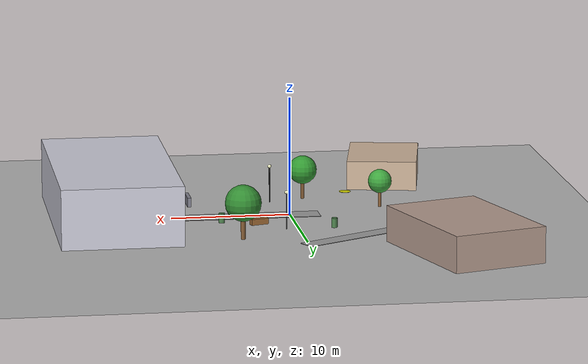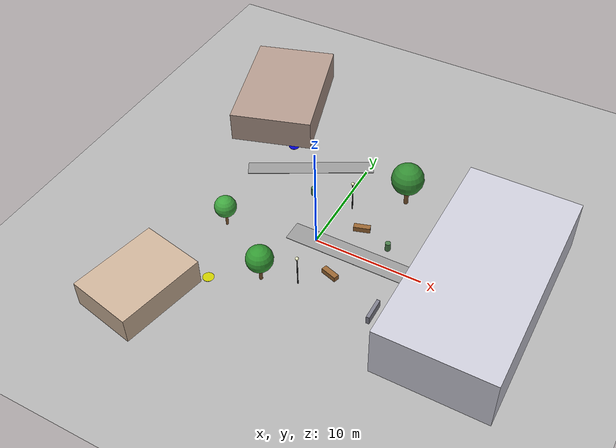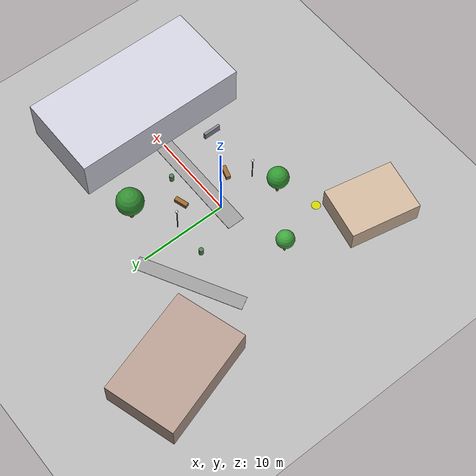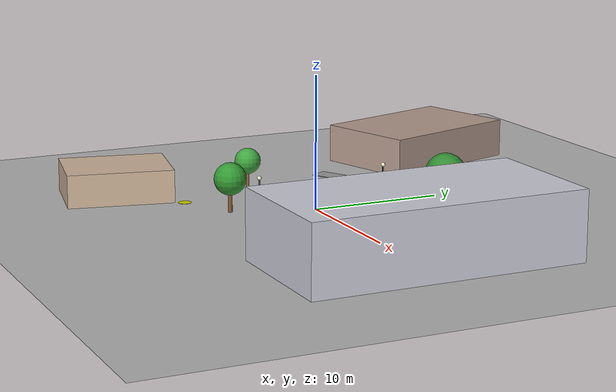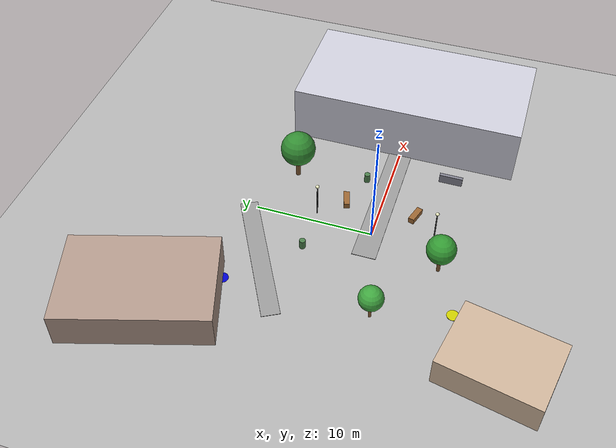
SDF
<?xml version="1.0" ?>
<sdf version="1.6">
  <world name="campus_world">

    <!-- Physics settings for stability -->
    <physics type="ode">
      <max_step_size>0.001</max_step_size>
      <real_time_factor>1</real_time_factor>
      <real_time_update_rate>1000</real_time_update_rate>
      <ode>
        <solver>
          <type>quick</type>
          <iters>50</iters>
          <sor>1.3</sor>
        </solver>
        <constraints>
          <cfm>0.0</cfm>
          <erp>0.2</erp>
          <contact_max_correcting_vel>100.0</contact_max_correcting_vel>
          <contact_surface_layer>0.001</contact_surface_layer>
        </constraints>
      </ode>
    </physics>

    <!-- Lighting -->
    <include>
      <uri>model://sun</uri>
    </include>

    <!-- Ground plane -->
    <model name="ground_plane">
      <static>true</static>
      <link name="link">
        <collision name="collision">
          <geometry>
            <plane>
              <normal>0 0 1</normal>
              <size>100 100</size>
            </plane>
          </geometry>
          <surface>
            <friction>
              <ode>
                <mu>1.0</mu>
                <mu2>1.0</mu2>
              </ode>
            </friction>
          </surface>
        </collision>
        <visual name="visual">
          <geometry>
            <plane>
              <normal>0 0 1</normal>
              <size>100 100</size>
            </plane>
          </geometry>
          <material>
            <ambient>0.3 0.3 0.3 1</ambient>
            <diffuse>0.7 0.7 0.7 1</diffuse>
          </material>
        </visual>
      </link>
    </model>

    <!-- CAMPUS BUILDINGS                                               -->

    <!-- Main Building -->
    <model name="building_main">
      <static>true</static>
      <pose>15 0 2.5 0 0 0</pose>
      <link name="link">
        <collision name="collision">
          <geometry>
            <box><size>10 20 5</size></box>
          </geometry>
        </collision>
        <visual name="visual">
          <geometry>
            <box><size>10 20 5</size></box>
          </geometry>
          <material>
            <ambient>0.6 0.6 0.65 1</ambient>
            <diffuse>0.8 0.8 0.85 1</diffuse>
          </material>
        </visual>
      </link>
    </model>

    <!-- Library Building -->
    <model name="building_library">
      <static>true</static>
      <pose>-12 15 1.5 0 0 0.3</pose>
      <link name="link">
        <collision name="collision">
          <geometry>
            <box><size>8 12 3</size></box>
          </geometry>
        </collision>
        <visual name="visual">
          <geometry>
            <box><size>8 12 3</size></box>
          </geometry>
          <material>
            <ambient>0.5 0.4 0.35 1</ambient>
            <diffuse>0.7 0.6 0.55 1</diffuse>
          </material>
        </visual>
      </link>
    </model>

    <!-- Cafeteria -->
    <model name="building_cafeteria">
      <static>true</static>
      <pose>-10 -12 1.25 0 0 -0.2</pose>
      <link name="link">
        <collision name="collision">
          <geometry>
            <box><size>6 8 2.5</size></box>
          </geometry>
        </collision>
        <visual name="visual">
          <geometry>
            <box><size>6 8 2.5</size></box>
          </geometry>
          <material>
            <ambient>0.6 0.5 0.4 1</ambient>
            <diffuse>0.8 0.7 0.6 1</diffuse>
          </material>
        </visual>
      </link>
    </model>

    <!-- PATHWAYS (slightly raised concrete paths)                      -->

    <!-- Main pathway -->
    <model name="pathway_main">
      <static>true</static>
      <pose>5 0 0.02 0 0 0</pose>
      <link name="link">
        <collision name="collision">
          <geometry>
            <box><size>15 2 0.04</size></box>
          </geometry>
        </collision>
        <visual name="visual">
          <geometry>
            <box><size>15 2 0.04</size></box>
          </geometry>
          <material>
            <ambient>0.5 0.5 0.5 1</ambient>
            <diffuse>0.6 0.6 0.6 1</diffuse>
          </material>
        </visual>
      </link>
    </model>

    <!-- Side pathway to library -->
    <model name="pathway_library">
      <static>true</static>
      <pose>-5 8 0.02 0 0 0.5</pose>
      <link name="link">
        <collision name="collision">
          <geometry>
            <box><size>12 1.5 0.04</size></box>
          </geometry>
        </collision>
        <visual name="visual">
          <geometry>
            <box><size>12 1.5 0.04</size></box>
          </geometry>
          <material>
            <ambient>0.5 0.5 0.5 1</ambient>
            <diffuse>0.6 0.6 0.6 1</diffuse>
          </material>
        </visual>
      </link>
    </model>

    <!-- OBSTACLES - Benches, Trash cans, Bike racks                    -->

    <!-- Bench 1 -->
    <model name="bench_1">
      <static>true</static>
      <pose>3 3 0.25 0 0 0.3</pose>
      <link name="link">
        <collision name="collision">
          <geometry>
            <box><size>1.5 0.5 0.5</size></box>
          </geometry>
        </collision>
        <visual name="visual">
          <geometry>
            <box><size>1.5 0.5 0.5</size></box>
          </geometry>
          <material>
            <ambient>0.4 0.25 0.1 1</ambient>
            <diffuse>0.6 0.4 0.2 1</diffuse>
          </material>
        </visual>
      </link>
    </model>

    <!-- Bench 2 -->
    <model name="bench_2">
      <static>true</static>
      <pose>3 -3 0.25 0 0 -0.3</pose>
      <link name="link">
        <collision name="collision">
          <geometry>
            <box><size>1.5 0.5 0.5</size></box>
          </geometry>
        </collision>
        <visual name="visual">
          <geometry>
            <box><size>1.5 0.5 0.5</size></box>
          </geometry>
          <material>
            <ambient>0.4 0.25 0.1 1</ambient>
            <diffuse>0.6 0.4 0.2 1</diffuse>
          </material>
        </visual>
      </link>
    </model>

    <!-- Trash can 1 -->
    <model name="trashcan_1">
      <static>true</static>
      <pose>6 2 0.4 0 0 0</pose>
      <link name="link">
        <collision name="collision">
          <geometry>
            <cylinder><radius>0.25</radius><length>0.8</length></cylinder>
          </geometry>
        </collision>
        <visual name="visual">
          <geometry>
            <cylinder><radius>0.25</radius><length>0.8</length></cylinder>
          </geometry>
          <material>
            <ambient>0.2 0.3 0.2 1</ambient>
            <diffuse>0.3 0.5 0.3 1</diffuse>
          </material>
        </visual>
      </link>
    </model>

    <!-- Trash can 2 -->
    <model name="trashcan_2">
      <static>true</static>
      <pose>-3 5 0.4 0 0 0</pose>
      <link name="link">
        <collision name="collision">
          <geometry>
            <cylinder><radius>0.25</radius><length>0.8</length></cylinder>
          </geometry>
        </collision>
        <visual name="visual">
          <geometry>
            <cylinder><radius>0.25</radius><length>0.8</length></cylinder>
          </geometry>
          <material>
            <ambient>0.2 0.3 0.2 1</ambient>
            <diffuse>0.3 0.5 0.3 1</diffuse>
          </material>
        </visual>
      </link>
    </model>

    <!-- Bike rack -->
    <model name="bike_rack">
      <static>true</static>
      <pose>8 -5 0.4 0 0 1.57</pose>
      <link name="link">
        <collision name="collision">
          <geometry>
            <box><size>2 0.3 0.8</size></box>
          </geometry>
        </collision>
        <visual name="visual">
          <geometry>
            <box><size>2 0.3 0.8</size></box>
          </geometry>
          <material>
            <ambient>0.3 0.3 0.35 1</ambient>
            <diffuse>0.5 0.5 0.55 1</diffuse>
          </material>
        </visual>
      </link>
    </model>

    <!-- TREES (cylinders for trunks, spheres for canopy)               -->

    <!-- Tree 1 -->
    <model name="tree_1">
      <static>true</static>
      <pose>-2 -6 0 0 0 0</pose>
      <link name="trunk">
        <visual name="trunk_visual">
          <pose>0 0 1 0 0 0</pose>
          <geometry>
            <cylinder><radius>0.15</radius><length>2</length></cylinder>
          </geometry>
          <material>
            <ambient>0.3 0.2 0.1 1</ambient>
            <diffuse>0.5 0.35 0.2 1</diffuse>
          </material>
        </visual>
        <collision name="trunk_collision">
          <pose>0 0 1 0 0 0</pose>
          <geometry>
            <cylinder><radius>0.15</radius><length>2</length></cylinder>
          </geometry>
        </collision>
        <visual name="canopy_visual">
          <pose>0 0 2.5 0 0 0</pose>
          <geometry>
            <sphere><radius>1.2</radius></sphere>
          </geometry>
          <material>
            <ambient>0.1 0.4 0.1 1</ambient>
            <diffuse>0.2 0.6 0.2 1</diffuse>
          </material>
        </visual>
        <collision name="canopy_collision">
          <pose>0 0 2.5 0 0 0</pose>
          <geometry>
            <sphere><radius>1.2</radius></sphere>
          </geometry>
        </collision>
      </link>
    </model>

    <!-- Tree 2 -->
    <model name="tree_2">
      <static>true</static>
      <pose>5 8 0 0 0 0</pose>
      <link name="trunk">
        <visual name="trunk_visual">
          <pose>0 0 1.2 0 0 0</pose>
          <geometry>
            <cylinder><radius>0.2</radius><length>2.4</length></cylinder>
          </geometry>
          <material>
            <ambient>0.3 0.2 0.1 1</ambient>
            <diffuse>0.5 0.35 0.2 1</diffuse>
          </material>
        </visual>
        <collision name="trunk_collision">
          <pose>0 0 1.2 0 0 0</pose>
          <geometry>
            <cylinder><radius>0.2</radius><length>2.4</length></cylinder>
          </geometry>
        </collision>
        <visual name="canopy_visual">
          <pose>0 0 3 0 0 0</pose>
          <geometry>
            <sphere><radius>1.5</radius></sphere>
          </geometry>
          <material>
            <ambient>0.1 0.35 0.1 1</ambient>
            <diffuse>0.2 0.55 0.2 1</diffuse>
          </material>
        </visual>
      </link>
    </model>

    <!-- Tree 3 -->
    <model name="tree_3">
      <static>true</static>
      <pose>-8 -2 0 0 0 0</pose>
      <link name="trunk">
        <visual name="trunk_visual">
          <pose>0 0 0.9 0 0 0</pose>
          <geometry>
            <cylinder><radius>0.12</radius><length>1.8</length></cylinder>
          </geometry>
          <material>
            <ambient>0.35 0.22 0.12 1</ambient>
            <diffuse>0.55 0.38 0.22 1</diffuse>
          </material>
        </visual>
        <collision name="trunk_collision">
          <pose>0 0 0.9 0 0 0</pose>
          <geometry>
            <cylinder><radius>0.12</radius><length>1.8</length></cylinder>
          </geometry>
        </collision>
        <visual name="canopy_visual">
          <pose>0 0 2.2 0 0 0</pose>
          <geometry>
            <sphere><radius>1.0</radius></sphere>
          </geometry>
          <material>
            <ambient>0.15 0.45 0.15 1</ambient>
            <diffuse>0.25 0.65 0.25 1</diffuse>
          </material>
        </visual>
      </link>
    </model>

    <!-- LAMP POSTS                                                     -->

    <!-- Lamp post 1 -->
    <model name="lamp_1">
      <static>true</static>
      <pose>1 5 0 0 0 0</pose>
      <link name="link">
        <visual name="pole">
          <pose>0 0 1.5 0 0 0</pose>
          <geometry>
            <cylinder><radius>0.05</radius><length>3</length></cylinder>
          </geometry>
          <material>
            <ambient>0.2 0.2 0.2 1</ambient>
            <diffuse>0.3 0.3 0.3 1</diffuse>
          </material>
        </visual>
        <collision name="pole_col">
          <pose>0 0 1.5 0 0 0</pose>
          <geometry>
            <cylinder><radius>0.05</radius><length>3</length></cylinder>
          </geometry>
        </collision>
        <visual name="lamp">
          <pose>0 0 3.1 0 0 0</pose>
          <geometry>
            <sphere><radius>0.15</radius></sphere>
          </geometry>
          <material>
            <ambient>0.9 0.9 0.7 1</ambient>
            <diffuse>1 1 0.8 1</diffuse>
            <emissive>0.3 0.3 0.2 1</emissive>
          </material>
        </visual>
      </link>
    </model>

    <!-- Lamp post 2 -->
    <model name="lamp_2">
      <static>true</static>
      <pose>1 -5 0 0 0 0</pose>
      <link name="link">
        <visual name="pole">
          <pose>0 0 1.5 0 0 0</pose>
          <geometry>
            <cylinder><radius>0.05</radius><length>3</length></cylinder>
          </geometry>
          <material>
            <ambient>0.2 0.2 0.2 1</ambient>
            <diffuse>0.3 0.3 0.3 1</diffuse>
          </material>
        </visual>
        <collision name="pole_col">
          <pose>0 0 1.5 0 0 0</pose>
          <geometry>
            <cylinder><radius>0.05</radius><length>3</length></cylinder>
          </geometry>
        </collision>
        <visual name="lamp">
          <pose>0 0 3.1 0 0 0</pose>
          <geometry>
            <sphere><radius>0.15</radius></sphere>
          </geometry>
          <material>
            <ambient>0.9 0.9 0.7 1</ambient>
            <diffuse>1 1 0.8 1</diffuse>
            <emissive>0.3 0.3 0.2 1</emissive>
          </material>
        </visual>
      </link>
    </model>

    <!-- DELIVERY WAYPOINTS (visual markers)                            -->

    <!-- Waypoint A - Near main building -->
    <model name="waypoint_a">
      <static>true</static>
      <pose>10 0 0.01 0 0 0</pose>
      <link name="link">
        <visual name="visual">
          <geometry>
            <cylinder><radius>0.5</radius><length>0.02</length></cylinder>
          </geometry>
          <material>
            <ambient>0 0.6 0 1</ambient>
            <diffuse>0 0.8 0 1</diffuse>
          </material>
        </visual>
      </link>
    </model>

    <!-- Waypoint B - Near library -->
    <model name="waypoint_b">
      <static>true</static>
      <pose>-8 10 0.01 0 0 0</pose>
      <link name="link">
        <visual name="visual">
          <geometry>
            <cylinder><radius>0.5</radius><length>0.02</length></cylinder>
          </geometry>
          <material>
            <ambient>0 0 0.6 1</ambient>
            <diffuse>0 0 0.8 1</diffuse>
          </material>
        </visual>
      </link>
    </model>

    <!-- Waypoint C - Near cafeteria -->
    <model name="waypoint_c">
      <static>true</static>
      <pose>-6 -8 0.01 0 0 0</pose>
      <link name="link">
        <visual name="visual">
          <geometry>
            <cylinder><radius>0.5</radius><length>0.02</length></cylinder>
          </geometry>
          <material>
            <ambient>0.6 0.6 0 1</ambient>
            <diffuse>0.8 0.8 0 1</diffuse>
          </material>
        </visual>
      </link>
    </model>

  </world>
</sdf>
